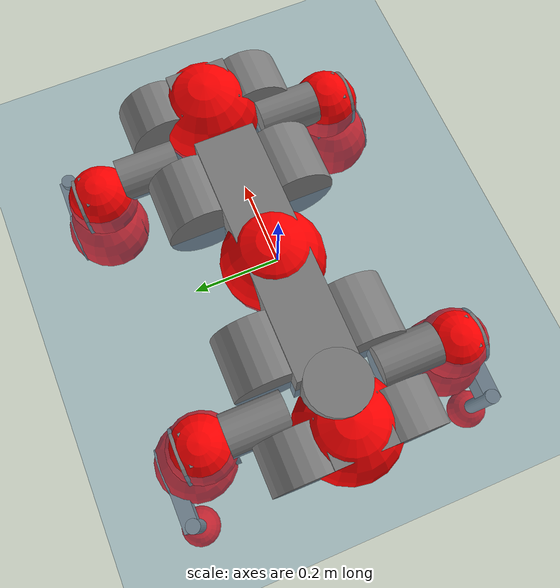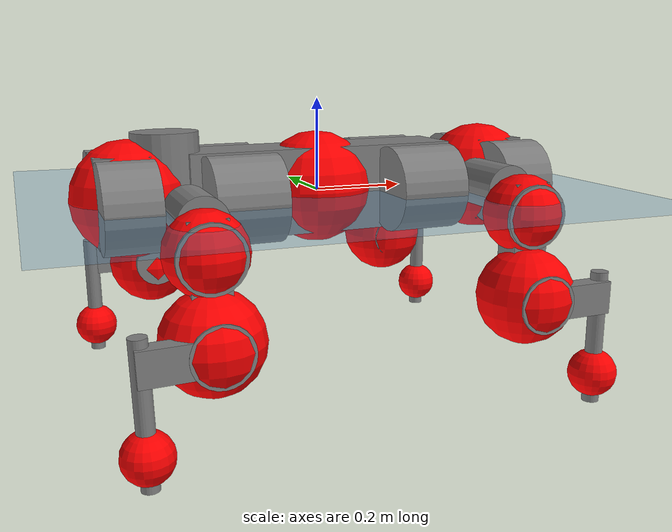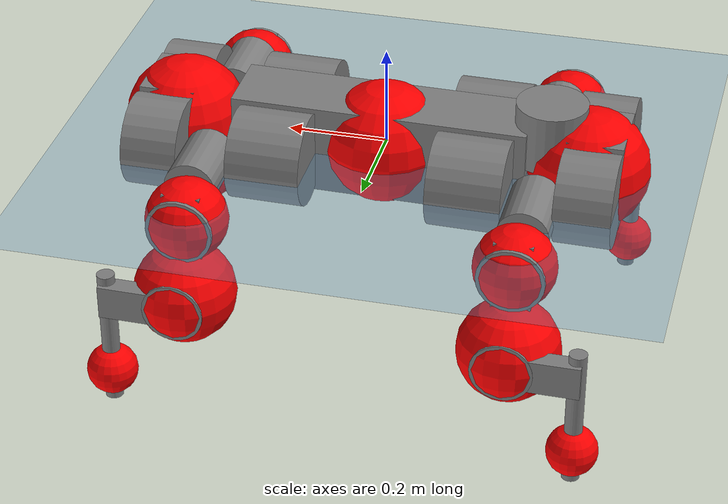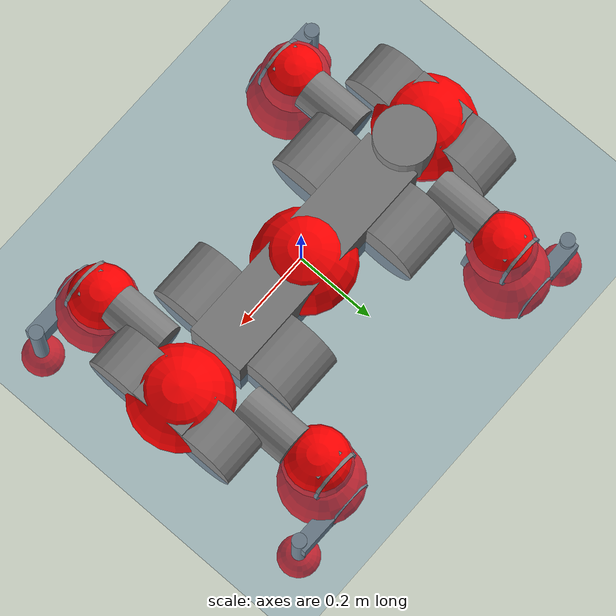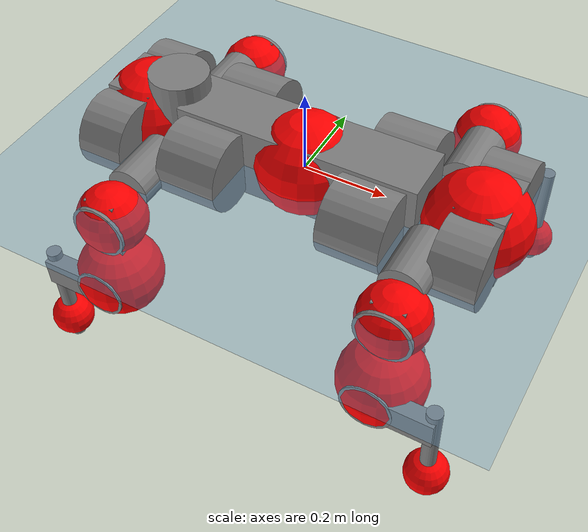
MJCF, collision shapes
<mujoco model="anymal_c">
  <compiler angle="radian" assetdir="assets" balanceinertia="true" inertiafromgeom="false"/>

  <option timestep="0.005" density="1.2" viscosity="2e-05"/>

  <size nkey="1"/>

  <visual>
    <quality shadowsize="8192"/>
    <map shadowclip="0.5"/>
  </visual>

  <default>
    <default class="/">
      <material specular="0" shininess="0.25"/>
      <geom contype="0" conaffinity="0" group="1" solref="-1000 -80"/>
      <site size="0.01 0.005 0.005" group="5"/>
      <general forcelimited="true" forcerange="-80 80" biastype="affine" gainprm="80" biasprm="0 -80 -2"/>
      <default class="anymal_c">
        <joint armature="0.01" damping="0.01" frictionloss="0.1"/>
        <default class="visual">
          <geom type="mesh" group="2"/>
          <default class="visual_zflip"/>
        </default>
        <default class="collision">
          <geom type="cylinder" group="3"/>
          <default class="foot">
            <geom size="0.03 0 0" type="sphere" condim="6" priority="1" friction="0.8 0.02 0.01" solimp="0.015 1 0.03"/>
          </default>
        </default>
      </default>
      <default class="reward_collision_sphere">
        <geom group="5" rgba="1 0 0 1"/>
      </default>
    </default>
  </default>

  <asset>
    <texture type="skybox" colorspace="auto" name="//unnamed_texture_0" builtin="gradient" rgb1="0.95 0.95 0.95" rgb2="0.95 0.95 0.95" width="100" height="600"/>
    <texture type="2d" colorspace="auto" name="texplane" builtin="checker" rgb1="0.345 0.575 0.748" rgb2="0.345 0.575 0.748" markrgb="1 1 1" width="512" height="512"/>
    <texture type="2d" colorspace="linear" name="base" file="base.png"/>
    <texture type="2d" colorspace="linear" name="top_shell" file="top_shell.png"/>
    <texture type="2d" colorspace="linear" name="bottom_shell" file="bottom_shell.png"/>
    <texture type="2d" colorspace="linear" name="remote" file="remote.png"/>
    <texture type="2d" colorspace="linear" name="hatch" file="hatch.png"/>
    <texture type="2d" colorspace="linear" name="handle" file="handle.png"/>
    <texture type="2d" colorspace="linear" name="face" file="face.png"/>
    <texture type="2d" colorspace="linear" name="battery" file="battery.png"/>
    <texture type="2d" colorspace="linear" name="lidar_cage" file="lidar_cage.png"/>
    <texture type="2d" colorspace="linear" name="depth_camera" file="depth_camera.png"/>
    <texture type="2d" colorspace="linear" name="wide_angle_camera" file="wide_angle_camera.png"/>
    <texture type="2d" colorspace="linear" name="lidar" file="lidar.png"/>
    <texture type="2d" colorspace="linear" name="drive" file="drive.png"/>
    <texture type="2d" colorspace="linear" name="hip_l" file="hip_l.png"/>
    <texture type="2d" colorspace="linear" name="shank_l" file="shank_l.png"/>
    <texture type="2d" colorspace="linear" name="foot" file="foot.png"/>
    <texture type="2d" colorspace="linear" name="thigh" file="thigh.png"/>
    <texture type="2d" colorspace="linear" name="shank_r" file="shank_r.png"/>
    <texture type="2d" colorspace="linear" name="hip_r" file="hip_r.png"/>
    <material name="MatPlane" class="/" texture="texplane" texuniform="true" texrepeat="2 2" specular="0.9" shininess="0.5"/>
    <material name="black_plastic" class="/" rgba="0.007 0.007 0.007 1"/>
    <material name="green" class="/" rgba="0.052 0.178 0.033 1"/>
    <material name="red" class="/" rgba="0.178 0.006 0.005 1"/>
    <material name="yellow" class="/" rgba="0.178 0.119 0.006 1"/>
    <material name="lwl" class="/" rgba="0.8 0.8 0.8 1"/>
    <material name="base" class="/" texture="base"/>
    <material name="top_shell" class="/" texture="top_shell"/>
    <material name="bottom_shell" class="/" texture="bottom_shell"/>
    <material name="hip_l" class="/" texture="hip_l"/>
    <material name="thigh" class="/" texture="thigh"/>
    <material name="shank_l" class="/" texture="shank_l"/>
    <material name="foot" class="/" texture="foot"/>
    <material name="hip_r" class="/" texture="hip_r"/>
    <material name="shank" class="/" texture="shank_r"/>
    <material name="hatch" class="/" texture="hatch"/>
    <material name="remote" class="/" texture="remote"/>
    <material name="handle" class="/" texture="handle"/>
    <material name="face" class="/" texture="face"/>
    <material name="depth_camera" class="/" texture="depth_camera"/>
    <material name="wide_angle_camera" class="/" texture="wide_angle_camera"/>
    <material name="battery" class="/" texture="battery"/>
    <material name="lidar_cage" class="/" texture="lidar_cage"/>
    <material name="lidar" class="/" texture="lidar"/>
    <material name="drive" class="/" texture="drive"/>
    <mesh name="base_0" class="/" file="base_0.obj"/>
    <mesh name="base_1" class="/" file="base_1.obj"/>
    <mesh name="base_2" class="/" file="base_2.obj"/>
    <mesh name="base_3" class="/" file="base_3.obj"/>
    <mesh name="base_4" class="/" file="base_4.obj"/>
    <mesh name="base_5" class="/" file="base_5.obj"/>
    <mesh name="top_shell" class="/" file="top_shell.obj"/>
    <mesh name="bottom_shell" class="/" file="bottom_shell.obj"/>
    <mesh name="remote" class="/" file="remote.obj"/>
    <mesh name="handle" class="/" file="handle.obj"/>
    <mesh name="face" class="/" file="face.obj"/>
    <mesh name="wide_angle_camera" class="/" file="wide_angle_camera.obj"/>
    <mesh name="depth_camera" class="/" file="depth_camera.obj"/>
    <mesh name="battery" class="/" file="battery.obj"/>
    <mesh name="lidar_cage" class="/" file="lidar_cage.obj"/>
    <mesh name="lidar" class="/" file="lidar.obj"/>
    <mesh name="drive" class="/" file="drive.obj"/>
    <mesh name="hip_l" class="/" file="hip_l.obj"/>
    <mesh name="thigh" class="/" file="thigh.obj"/>
    <mesh name="shank_l" class="/" file="shank_l.obj"/>
    <mesh name="foot" class="/" file="foot.obj"/>
    <mesh name="hip_r" class="/" file="hip_r.obj"/>
    <mesh name="hatch" class="/" file="hatch.obj"/>
    <mesh name="shank_r" class="/" file="shank_r.obj"/>
  </asset>

  <worldbody>
    <geom name="floor" class="/" size="100 100 0.125" type="plane" group="0" material="MatPlane"/>
    <light name="toplight_shadow" class="/" pos="0 0 5" dir="0.0990148 0.0990148 -0.990148" type="directional" ambient="0.04 0.04 0.04" diffuse="0.55 0.55 0.55" specular="0.12 0.12 0.12"/>
    <light name="toplight_fill" class="/" pos="0 0 5" dir="0.0990148 0.0990148 -0.990148" type="directional" castshadow="false" ambient="0.04 0.04 0.04" diffuse="0.3 0.3 0.3" specular="0.08 0.08 0.08"/>
    <body name="trunk" childclass="anymal_c" pos="0.000559403 0.0105977 0.00607733" quat="0.999986 -0.00135731 -0.00513204 0.000474555">
      <inertial pos="0.011502 0.0155531 0.0162391" quat="0.513324 0.469436 0.528463 0.486678" mass="20.799" diaginertia="0.586024 7.57862 0.0109093"/>
      <joint name="//unnamed_joint_0" type="free" armature="0" damping="0" frictionloss="0"/>
      <geom name="//unnamed_geom_1" class="visual" material="green" mesh="base_0"/>
      <geom name="//unnamed_geom_2" class="visual" material="yellow" mesh="base_1"/>
      <geom name="//unnamed_geom_3" class="visual" material="red" mesh="base_2"/>
      <geom name="//unnamed_geom_4" class="visual" material="black_plastic" mesh="base_3"/>
      <geom name="//unnamed_geom_5" class="visual" material="lwl" mesh="base_4"/>
      <geom name="//unnamed_geom_6" class="visual" material="base" mesh="base_5"/>
      <geom name="trunk_1" class="collision" size="0.296425 0.0715508 0.0919938" type="box"/>
      <geom name="trunk_2" class="collision" size="0.0919938 0.0741061" pos="0.199213 0.112086 0" quat="0.707107 0 0.707107 0"/>
      <geom name="trunk_3" class="collision" size="0.0919938 0.0741061" pos="-0.199213 0.112086 0" quat="0.707107 0 0.707107 0"/>
      <geom name="trunk_4" class="collision" size="0.0919938 0.0741061" pos="0.199213 -0.112086 0" quat="0.707107 0 0.707107 0"/>
      <geom name="trunk_5" class="collision" size="0.0919938 0.0741061" pos="-0.199213 -0.112086 0" quat="0.707107 0 0.707107 0"/>
      <geom name="//unnamed_geom_12" class="visual" material="top_shell" mesh="top_shell"/>
      <geom name="//unnamed_geom_13" class="visual" material="bottom_shell" mesh="bottom_shell"/>
      <geom name="//unnamed_geom_14" class="visual" material="remote" mesh="remote"/>
      <geom name="//unnamed_geom_15" class="visual" material="handle" mesh="handle"/>
      <geom name="//unnamed_geom_16" class="visual" pos="0.379649 0 0" quat="1 0 0 0" material="face" mesh="face"/>
      <geom name="trunk_6" class="collision" size="0.0562185 0.0715508 0.0919938" pos="0.430025 0 0" type="box"/>
      <geom name="//unnamed_geom_18" class="collision" size="0.0919938 0.0562185" pos="0.430025 0.112086 0" quat="0.707107 0 0.707107 0"/>
      <geom name="//unnamed_geom_19" class="collision" size="0.0919938 0.0562185" pos="0.430025 -0.112086 0" quat="0.707107 0 0.707107 0"/>
      <geom name="//unnamed_geom_20" class="visual" pos="0.42282 0 -0.0132539" quat="0.965926 0 0.258819 0" material="depth_camera" mesh="depth_camera"/>
      <geom name="//unnamed_geom_21" class="visual" pos="0.469867 0 0.00822328" material="wide_angle_camera" mesh="wide_angle_camera"/>
      <geom name="//unnamed_geom_22" class="visual_zflip" pos="-0.379649 0 0" quat="0 0 0 1" material="face" mesh="face"/>
      <geom name="trunk_7" class="collision" size="0.0562185 0.0715508 0.0919938" pos="-0.430025 0 0" quat="0 0 0 1" type="box"/>
      <geom name="//unnamed_geom_24" class="collision" size="0.0919938 0.0562185" pos="-0.430025 -0.112086 0" quat="0 -0.707107 0 0.707107"/>
      <geom name="//unnamed_geom_25" class="collision" size="0.0919938 0.0562185" pos="-0.430025 0.112086 0" quat="0 -0.707107 0 0.707107"/>
      <geom name="//unnamed_geom_26" class="visual" pos="-0.42282 0 -0.0132539" quat="0 -0.258819 0 0.965926" material="depth_camera" mesh="depth_camera"/>
      <geom name="//unnamed_geom_27" class="visual_zflip" pos="-0.469867 0 0.00822328" quat="0 0 0 1" material="wide_angle_camera" mesh="wide_angle_camera"/>
      <geom name="//unnamed_geom_28" class="visual" material="battery" mesh="battery"/>
      <geom name="//unnamed_geom_29" class="visual" pos="0 0.131407 0.0187439" quat="0.683013 -0.183013 0.183013 0.683013" material="depth_camera" mesh="depth_camera"/>
      <geom name="//unnamed_geom_30" class="visual" pos="0 -0.131407 0.0187439" quat="0.683013 0.183013 0.183013 -0.683013" material="depth_camera" mesh="depth_camera"/>
      <geom name="//unnamed_geom_31" class="visual" pos="-0.333395 0 0.0403748" quat="1 0 0 0" material="lidar_cage" mesh="lidar_cage"/>
      <geom name="trunk_8" class="collision" size="0.0715508 0.0613292" pos="-0.333395 0 0.0733339"/>
      <geom name="//unnamed_geom_33" class="visual" pos="-0.333395 0.000269237 0.0781129" quat="0.707107 0 0 -0.707107" material="lidar" mesh="lidar"/>
      <geom name="//unnamed_geom_34" class="visual" pos="0.274685 0.166153 1.81455e-08" quat="0.258819 0.965926 0 0" material="drive" mesh="drive"/>
      <geom name="//unnamed_geom_35" class="visual" pos="0.274685 -0.166153 -1.81455e-08" quat="0.258819 -0.965926 0 0" material="drive" mesh="drive"/>
      <geom name="//unnamed_geom_36" class="visual" pos="-0.274685 0.166153 -1.81455e-08" quat="0 0 0.965926 -0.258819" material="drive" mesh="drive"/>
      <geom name="//unnamed_geom_37" class="visual" pos="-0.274685 -0.166153 1.81455e-08" quat="0 0 -0.965926 -0.258819" material="drive" mesh="drive"/>
      <geom name="//unnamed_geom_38" class="visual" pos="0.106247 0 0.0401002" quat="1 0 0 0" material="hatch" mesh="hatch"/>
      <geom name="//unnamed_geom_39" class="reward_collision_sphere" size="0.122658"/>
      <geom name="//unnamed_geom_40" class="reward_collision_sphere" size="0.122658" pos="0.412164 0 0"/>
      <geom name="//unnamed_geom_41" class="reward_collision_sphere" size="0.122658" pos="-0.412164 0 0"/>
      <site name="imu" pos="0.24138 0.00430017 0.0164525" size="0.0102215"/>
      <camera name="track" pos="0 -3.20245 0" quat="0.707107 0.707107 0 0" mode="trackcom"/>
      <camera name="ego_camera" pos="0.412164 0 -0.0219727" quat="-0.5 -0.5 0.5 0.5"/>
      <body name="LF_HIP" pos="0.27225 0.167145 -0.00243111" quat="0.258239 0.966081 0.000397418 -2.2164e-05">
        <inertial pos="0.0525103 -0.0116911 -0.00479632" quat="-0.192385 0.676018 -0.176672 0.689038" mass="2.76756" diaginertia="0.00364935 0.0537602 0.000158295"/>
        <joint name="LF_HAA" pos="0 0 0" axis="0.999468 -0.0316963 0.00774068" range="-0.542499 0.567766" armature="0.011841" damping="0.00201239" frictionloss="0.103128"/>
        <geom name="//unnamed_geom_42" class="visual" pos="0 0.00106742 -0.000175322" quat="0.258819 -0.965926 0 0" material="hip_l" mesh="hip_l"/>
        <geom name="//unnamed_geom_43" class="visual" pos="0.0548636 -0.0751283 -0.0355949" quat="0.183013 -0.683013 0.683013 0.183013" material="drive" mesh="drive"/>
        <geom name="//unnamed_geom_44" class="collision" size="0.0511077 0.0715508" pos="0.0548637 -0.0191503 -0.00379304" quat="-0.353553 -0.612372 0.612372 -0.353553"/>
        <body name="LF_THIGH" pos="0.0422448 -0.125106 -0.0286721" quat="0.185421 -0.68758 0.678983 0.178425">
          <inertial pos="0.0289097 -0.0159516 -0.130994" quat="0.995509 -0.00621807 -0.0814409 0.0478655" mass="2.90868" diaginertia="0.0227821 0.253376 0.000206622"/>
          <joint name="LF_HFE" pos="0 0 0" axis="0.998497 0.039607 0.0378879" range="-2.9238 3.43115" armature="0.00203264" damping="0" frictionloss="0.149388"/>
          <geom name="//unnamed_geom_45" class="visual" pos="-0.0136348 -2.14853e-05 0" quat="0.707107 0 0 -0.707107" material="thigh" mesh="thigh"/>
          <geom name="//unnamed_geom_46" class="collision" size="0.06644 0.0408861" pos="0.0366368 0 0" quat="0.5 0.5 -0.5 -0.5"/>
          <geom name="//unnamed_geom_47" class="collision" size="0.0383308 0.0306646 0.144445" pos="0.0274776 0 -0.0776262" quat="0.707107 0 0 -0.707107" type="box"/>
          <geom name="//unnamed_geom_48" class="visual" pos="0.0918669 0 -0.156555" quat="1 0 0 0" material="drive" mesh="drive"/>
          <geom name="//unnamed_geom_49" class="collision" size="0.0511077 0.0715508" pos="0.0277524 0 -0.156555" quat="0.707107 0 0.707107 0"/>
          <geom name="//unnamed_geom_50" class="reward_collision_sphere" size="0.0817723" pos="0.022898 0 0"/>
          <body name="LF_SHANK" pos="0.0873914 -0.00452578 -0.156478" quat="0.999999 0.00102134 1.96451e-05 6.84452e-05">
            <inertial pos="0.0187737 -0.0879944 -0.0318788" quat="0.990729 -0.135788 0.00408343 0.0011956" mass="0.650151" diaginertia="0.00745868 0.0896691 6.51858e-05"/>
            <joint name="LF_KFE" pos="0 0 0" axis="0.999979 0.00629367 -0.00119118" range="-3.46204 2.89431" armature="0.0153403" damping="0.0764381" frictionloss="0.0698636"/>
            <geom name="//unnamed_geom_51" class="visual" pos="-0.00444602 -0.0237064 0" quat="0.707107 0 0 -0.707107" material="shank_l" mesh="shank_l"/>
            <geom name="LF_kfe_act" class="collision" size="0.0613292 0.0204431" pos="0.0183184 0 0" quat="0.5 0.5 -0.5 -0.5"/>
            <geom name="//unnamed_geom_53" class="collision" size="0.0587728 0.0344977 0.0194209" pos="0.0183184 -0.0920687 0" quat="0.5 0.5 -0.5 -0.5" type="box"/>
            <geom name="//unnamed_geom_54" class="visual" pos="0.0119538 -0.148467 -0.185653" quat="0.382683 0 0 -0.92388" material="foot" mesh="foot"/>
            <geom name="LF_calf" class="collision" size="0.0178877 0.144381" pos="0.0119528 -0.140828 -0.0928264" quat="0.707107 0 0 -0.707107"/>
            <geom name="LF_foot" class="foot" size="0.0341331" pos="0.0119528 -0.140828 -0.173293" quat="0.707107 0 0 -0.707107"/>
            <geom name="//unnamed_geom_57" class="reward_collision_sphere" size="0.102215" pos="-0.045796 0 0"/>
            <geom name="//unnamed_geom_58" class="reward_collision_sphere" size="0.0511077" pos="0.0119528 -0.140828 -0.173293"/>
            <site name="LF_foot" class="foot" pos="0.0119528 -0.140828 -0.173293" quat="0.707107 0 0 -0.707107" size="0.0102215"/>
          </body>
        </body>
      </body>
      <body name="RF_HIP" pos="0.29056 -0.158521 0.0104069" quat="0.259892 -0.965635 -9.58823e-05 -0.00210142">
        <inertial pos="0.0554398 0.0172998 0.00319711" quat="0.0930655 0.658975 0.0857147 0.741447" mass="3.20171" diaginertia="0.00426272 0.0518389 0.000149616"/>
        <joint name="RF_HAA" pos="0 0 0" axis="0.99893 -0.0311101 -0.0342059" stiffness="0.0817257" range="-0.542722 0.454747" armature="0.0138386" damping="0.00650128" frictionloss="0.0731222"/>
        <geom name="//unnamed_geom_59" class="visual" pos="0 -0.00106741 -0.000175322" quat="0.258819 0.965926 0 0" material="hip_r" mesh="hip_r"/>
        <geom name="//unnamed_geom_60" class="visual" pos="0.0548637 0.0751283 -0.0355949" quat="0.183013 0.683013 0.683013 -0.183013" material="drive" mesh="drive"/>
        <geom name="//unnamed_geom_61" class="collision" size="0.0511077 0.0715508" pos="0.0548637 0.0191503 -0.00379304" quat="-0.353553 0.612372 0.612372 0.353553"/>
        <body name="RF_THIGH" pos="0.0622499 0.117099 -0.00931264" quat="0.182749 0.682687 0.683286 -0.183469">
          <inertial pos="0.0196783 0.0103345 -0.149461" quat="0.98987 -0.0113316 -0.0737899 0.120766" mass="3.01591" diaginertia="0.0218973 0.312598 0.000207624"/>
          <joint name="RF_HFE" pos="0 0 0" axis="0.999935 -0.00274035 0.011059" range="-3.11883 3.00794" armature="0.0166644" damping="0" frictionloss="0.153273"/>
          <geom name="//unnamed_geom_62" class="visual" pos="-0.0136348 -2.14853e-05 0" quat="0.707107 0 0 -0.707107" material="thigh" mesh="thigh"/>
          <geom name="//unnamed_geom_63" class="collision" size="0.06644 0.0408861" pos="0.0366368 0 0" quat="0.5 0.5 0.5 0.5"/>
          <geom name="//unnamed_geom_64" class="collision" size="0.0383308 0.0306646 0.144445" pos="0.0274776 0 -0.0776262" quat="0.707107 0 0 0.707107" type="box"/>
          <geom name="//unnamed_geom_65" class="visual" pos="0.0918669 0 -0.156555" quat="1 0 0 0" material="drive" mesh="drive"/>
          <geom name="//unnamed_geom_66" class="collision" size="0.0511077 0.0715508" pos="0.0277524 0 -0.156555" quat="0.707107 0 0.707107 0"/>
          <geom name="//unnamed_geom_67" class="reward_collision_sphere" size="0.0817723" pos="0.022898 0 0"/>
          <body name="RF_SHANK" pos="0.0964619 -0.00295363 -0.170471" quat="0.999997 -0.0010775 0.000126678 -0.00206701">
            <inertial pos="0.0150335 0.0876499 -0.0463595" quat="0.991764 0.116943 0.0337398 0.0398629" mass="0.504924" diaginertia="0.00571731 0.0671068 5.03452e-05"/>
            <joint name="RF_KFE" pos="0 0 0" axis="0.99992 -0.000388214 0.0126348" range="-3.26877 3.03023" armature="0.0118879" damping="0.0857037" frictionloss="0.137241"/>
            <geom name="//unnamed_geom_68" class="visual" pos="-0.00444599 0.0237063 0" quat="0.707107 0 0 0.707107" material="shank" mesh="shank_r"/>
            <geom name="RF_kfe_act" class="collision" size="0.0613292 0.0204431" pos="0.0183184 0 0" quat="0.5 0.5 0.5 0.5"/>
            <geom name="//unnamed_geom_70" class="collision" size="0.0587728 0.0344977 0.0194209" pos="0.0183184 0.0920687 0" quat="0.5 0.5 0.5 0.5" type="box"/>
            <geom name="//unnamed_geom_71" class="visual" pos="0.0119517 0.148467 -0.185653" quat="0.382683 0 0 0.92388" material="foot" mesh="foot"/>
            <geom name="RF_calf" class="collision" size="0.0178877 0.144381" pos="0.0119528 0.140828 -0.0928264" quat="0.707107 0 0 0.707107"/>
            <geom name="RF_foot" class="foot" size="0.048902" pos="0.0119528 0.140828 -0.173293" quat="0.707107 0 0 0.707107"/>
            <geom name="//unnamed_geom_74" class="reward_collision_sphere" size="0.102215" pos="-0.045796 0 0"/>
            <geom name="//unnamed_geom_75" class="reward_collision_sphere" size="0.0511077" pos="0.0119528 0.140828 -0.173293"/>
            <site name="RF_foot" class="foot" pos="0.0119528 0.140828 -0.173293" quat="0.707107 0 0 0.707107" size="0.0102215"/>
          </body>
        </body>
      </body>
      <body name="LH_HIP" pos="-0.272539 0.158033 -0.0117064" quat="-0.00044696 0.000425805 0.965942 -0.258758">
        <inertial pos="0.0476348 0.0291626 -0.0144273" quat="0.141293 0.679264 0.151171 0.704119" mass="3.89229" diaginertia="0.00433883 0.0624186 0.000158359"/>
        <joint name="LH_HAA" pos="0 0 0" axis="0.999306 -0.00698926 0.0365761" range="-0.752011 0.853108" armature="0.0126094" damping="0.0125405" frictionloss="0.0412148"/>
        <geom name="//unnamed_geom_76" class="visual" pos="0 -0.00106741 -0.000175322" quat="-0.258819 -0.965926 0 0" material="hip_r" mesh="hip_r"/>
        <geom name="//unnamed_geom_77" class="visual" pos="0.0548637 0.0751283 -0.0355949" quat="0.183013 0.683013 0.683013 -0.183013" material="drive" mesh="drive"/>
        <geom name="//unnamed_geom_78" class="collision" size="0.0511077 0.0715508" pos="0.0548637 0.0191503 -0.00379304" quat="-0.353553 0.612372 0.612372 0.353553"/>
        <body name="LH_THIGH" pos="0.0525839 0.124648 -0.0282343" quat="0.18608 0.687068 0.677835 -0.183986">
          <inertial pos="0.0270088 -0.0166992 -0.141482" quat="0.985825 0.019085 -0.0873788 0.141947" mass="3.86928" diaginertia="0.0214714 0.274669 0.000171354"/>
          <joint name="LH_HFE" pos="0 0 0" axis="0.996822 -0.0710992 0.0359178" stiffness="0.0130263" range="-3.07885 3.16643" armature="0.00485202" damping="0" frictionloss="0.149568"/>
          <geom name="//unnamed_geom_79" class="visual" pos="-0.0136348 -2.14853e-05 0" quat="0.707107 0 0 -0.707107" material="thigh" mesh="thigh"/>
          <geom name="//unnamed_geom_80" class="collision" size="0.06644 0.0408861" pos="0.0366368 0 0" quat="0.5 0.5 -0.5 -0.5"/>
          <geom name="//unnamed_geom_81" class="collision" size="0.0383308 0.0306646 0.144445" pos="0.0274776 0 -0.0776262" quat="0.707107 0 0 -0.707107" type="box"/>
          <geom name="//unnamed_geom_82" class="visual" pos="0.0918669 0 -0.156555" quat="1 0 0 0" material="drive" mesh="drive"/>
          <geom name="//unnamed_geom_83" class="collision" size="0.0511077 0.0715508" pos="0.0277524 0 -0.156555" quat="0.707107 0 0.707107 0"/>
          <geom name="//unnamed_geom_84" class="reward_collision_sphere" size="0.0817723" pos="0.022898 0 0"/>
          <body name="LH_SHANK" pos="0.0996371 3.88889e-05 -0.167619" quat="0.99999 0.000787447 -0.0019489 -0.00396061">
            <inertial pos="0.00471014 0.0853067 -0.0419437" quat="0.99175 0.125417 -0.0037958 0.0262181" mass="0.643183" diaginertia="0.00711172 0.105837 6.13367e-05"/>
            <joint name="LH_KFE" pos="0 0 0" axis="0.999993 0.00304142 -0.00235996" range="-3.45292 3.14014" armature="0.00199555" damping="0" frictionloss="0.154662"/>
            <geom name="//unnamed_geom_85" class="visual" pos="-0.00444599 0.0237063 0" quat="-0.707107 0 0 -0.707107" material="shank" mesh="shank_r"/>
            <geom name="LH_kfe_act" class="collision" size="0.0613292 0.0204431" pos="0.0183184 0 0" quat="0.5 0.5 -0.5 -0.5"/>
            <geom name="//unnamed_geom_87" class="collision" size="0.0587728 0.0344977 0.0194209" pos="0.0183184 0.0920687 0" quat="0.5 0.5 -0.5 -0.5" type="box"/>
            <geom name="//unnamed_geom_88" class="visual" pos="0.0119517 0.148467 -0.185653" quat="-0.382683 0 0 -0.92388" material="foot" mesh="foot"/>
            <geom name="LH_calf" class="collision" size="0.0178877 0.144381" pos="0.0119528 0.140828 -0.0928264" quat="0.707107 0 0 -0.707107"/>
            <geom name="LH_foot" class="foot" size="0.0314439" pos="0.0119528 0.140828 -0.173293" quat="0.707107 0 0 -0.707107"/>
            <geom name="//unnamed_geom_91" class="reward_collision_sphere" size="0.102215" pos="-0.045796 0 0"/>
            <geom name="//unnamed_geom_92" class="reward_collision_sphere" size="0.0511077" pos="0.0119528 0.140828 -0.173293"/>
            <site name="LH_foot" class="foot" pos="0.0119528 0.140828 -0.173293" quat="0.707107 0 0 -0.707107" size="0.0102215"/>
          </body>
        </body>
      </body>
      <body name="RH_HIP" pos="-0.259079 -0.167731 -0.00525258" quat="-0.00775047 0.000763905 -0.965175 -0.26149">
        <inertial pos="0.0500579 -0.0184595 -0.0013763" quat="-0.12723 0.71066 -0.1354 0.678559" mass="3.25247" diaginertia="0.00422199 0.0529684 0.000144104"/>
        <joint name="RH_HAA" pos="0 0 0" axis="0.999941 -0.00873802 0.00637711" range="-0.631414 0.274886" armature="0.00286198" damping="0.0213601" frictionloss="0.0516285"/>
        <geom name="//unnamed_geom_93" class="visual" pos="0 0.00106742 -0.000175322" quat="-0.258819 0.965926 0 0" material="hip_l" mesh="hip_l"/>
        <geom name="//unnamed_geom_94" class="visual" pos="0.0548636 -0.0751283 -0.0355949" quat="-0.183013 0.683013 -0.683013 -0.183013" material="drive" mesh="drive"/>
        <geom name="//unnamed_geom_95" class="collision" size="0.0511077 0.0715508" pos="0.0548637 -0.0191503 -0.00379304" quat="0.353553 0.612372 -0.612372 0.353553"/>
        <body name="RH_THIGH" pos="0.0657534 -0.128257 -0.0166509" quat="-0.18405 0.683886 -0.682763 -0.179609">
          <inertial pos="0.0283295 0.0117759 -0.132626" quat="0.991511 -0.011448 -0.0975704 0.0851744" mass="2.85025" diaginertia="0.0189619 0.316888 0.000222123"/>
          <joint name="RH_HFE" pos="0 0 0" axis="0.999973 0.00734007 0.000580826" range="-3.17255 2.81574" armature="0.0181947" damping="0" frictionloss="0.113076"/>
          <geom name="//unnamed_geom_96" class="visual" pos="-0.0136348 -2.14853e-05 0" quat="0.707107 0 0 -0.707107" material="thigh" mesh="thigh"/>
          <geom name="//unnamed_geom_97" class="collision" size="0.06644 0.0408861" pos="0.0366368 0 0" quat="0.5 0.5 0.5 0.5"/>
          <geom name="//unnamed_geom_98" class="collision" size="0.0383308 0.0306646 0.144445" pos="0.0274776 0 -0.0776262" quat="0.707107 0 0 0.707107" type="box"/>
          <geom name="//unnamed_geom_99" class="visual" pos="0.0918669 0 -0.156555" quat="1 0 0 0" material="drive" mesh="drive"/>
          <geom name="//unnamed_geom_100" class="collision" size="0.0511077 0.0715508" pos="0.0277524 0 -0.156555" quat="0.707107 0 0.707107 0"/>
          <geom name="//unnamed_geom_101" class="reward_collision_sphere" size="0.0817723" pos="0.022898 0 0"/>
          <body name="RH_SHANK" pos="0.0823724 -0.00145218 -0.164305" quat="0.999999 -0.000472917 -0.000347577 0.00119196">
            <inertial pos="0.0144256 -0.101428 -0.0454068" quat="0.993152 -0.114673 0.00113506 -0.0223152" mass="0.550413" diaginertia="0.00613855 0.0878487 5.83575e-05"/>
            <joint name="RH_KFE" pos="0 0 0" axis="0.998229 0.0301328 0.0512916" range="-3.41461 2.97285" armature="0.0124694" damping="0.0156799" frictionloss="0.0554859"/>
            <geom name="//unnamed_geom_102" class="visual" pos="-0.00444602 -0.0237064 0" quat="0.707107 0 0 -0.707107" material="shank_l" mesh="shank_l"/>
            <geom name="RH_kfe_act" class="collision" size="0.0613292 0.0204431" pos="0.0183184 0 0" quat="0.5 0.5 0.5 0.5"/>
            <geom name="//unnamed_geom_104" class="collision" size="0.0587728 0.0344977 0.0194209" pos="0.0183184 -0.0920687 0" quat="0.5 0.5 0.5 0.5" type="box"/>
            <geom name="//unnamed_geom_105" class="visual" pos="0.0119538 -0.148467 -0.185653" quat="0.382683 0 0 -0.92388" material="foot" mesh="foot"/>
            <geom name="RH_calf" class="collision" size="0.0178877 0.144381" pos="0.0119528 -0.140828 -0.0928264" quat="0.707107 0 0 0.707107"/>
            <geom name="RH_foot" class="foot" size="0.0118842" pos="0.0119528 -0.140828 -0.173293" quat="0.707107 0 0 0.707107"/>
            <geom name="//unnamed_geom_108" class="reward_collision_sphere" size="0.102215" pos="-0.045796 0 0"/>
            <geom name="//unnamed_geom_109" class="reward_collision_sphere" size="0.0511077" pos="0.0119528 -0.140828 -0.173293"/>
            <site name="RH_foot" class="foot" pos="0.0119528 -0.140828 -0.173293" quat="0.707107 0 0 0.707107" size="0.0102215"/>
          </body>
        </body>
      </body>
    </body>
  </worldbody>

  <contact>
    <pair class="/" geom1="floor" geom2="LF_foot" name="//unnamed_contact_0"/>
    <pair class="/" geom1="floor" geom2="RF_foot" name="//unnamed_contact_1"/>
    <pair class="/" geom1="floor" geom2="LH_foot" name="//unnamed_contact_2"/>
    <pair class="/" geom1="floor" geom2="RH_foot" name="//unnamed_contact_3"/>
  </contact>

  <actuator>
    <general name="LF_HAA" class="/" joint="LF_HAA" forcerange="-56.9064 56.9064" gainprm="75.8926" biasprm="0 -75.8926 -1.94448"/>
    <general name="LF_HFE" class="/" joint="LF_HFE" forcerange="-83.7664 83.7664" gainprm="75.8926" biasprm="0 -75.8926 -1.94448"/>
    <general name="LF_KFE" class="/" joint="LF_KFE" forcerange="-77.0789 77.0789" gainprm="75.8926" biasprm="0 -75.8926 -1.94448"/>
    <general name="RF_HAA" class="/" joint="RF_HAA" forcerange="-108.388 108.388" gainprm="75.8926" biasprm="0 -75.8926 -1.94448"/>
    <general name="RF_HFE" class="/" joint="RF_HFE" forcerange="-85.9289 85.9289" gainprm="75.8926" biasprm="0 -75.8926 -1.94448"/>
    <general name="RF_KFE" class="/" joint="RF_KFE" forcerange="-116.911 116.911" gainprm="75.8926" biasprm="0 -75.8926 -1.94448"/>
    <general name="LH_HAA" class="/" joint="LH_HAA" forcerange="-101.144 101.144" gainprm="75.8926" biasprm="0 -75.8926 -1.94448"/>
    <general name="LH_HFE" class="/" joint="LH_HFE" forcerange="-85.5685 85.5685" gainprm="75.8926" biasprm="0 -75.8926 -1.94448"/>
    <general name="LH_KFE" class="/" joint="LH_KFE" forcerange="-64.877 64.877" gainprm="75.8926" biasprm="0 -75.8926 -1.94448"/>
    <general name="RH_HAA" class="/" joint="RH_HAA" forcerange="-107.3 107.3" gainprm="75.8926" biasprm="0 -75.8926 -1.94448"/>
    <general name="RH_HFE" class="/" joint="RH_HFE" forcerange="-60.4173 60.4173" gainprm="75.8926" biasprm="0 -75.8926 -1.94448"/>
    <general name="RH_KFE" class="/" joint="RH_KFE" forcerange="-38.8417 38.8417" gainprm="75.8926" biasprm="0 -75.8926 -1.94448"/>
  </actuator>

  <sensor>
    <gyro site="imu" name="imu_angular_velocity"/>
    <velocimeter site="imu" name="imu_linear_velocity"/>
    <framelinvel objtype="site" objname="LF_foot" name="LF_foot_global_linear_velocity"/>
    <framelinvel objtype="site" objname="RF_foot" name="RF_foot_global_linear_velocity"/>
    <framelinvel objtype="site" objname="LH_foot" name="LH_foot_global_linear_velocity"/>
    <framelinvel objtype="site" objname="RH_foot" name="RH_foot_global_linear_velocity"/>
  </sensor>

  <keyframe>
    <key name="home" qpos="0 0 0.55 1 0 0 0 0 0.4 -0.8 0 -0.4 0.8 0 -0.4 0.8 0 0.4 -0.8"/>
  </keyframe>
</mujoco>
